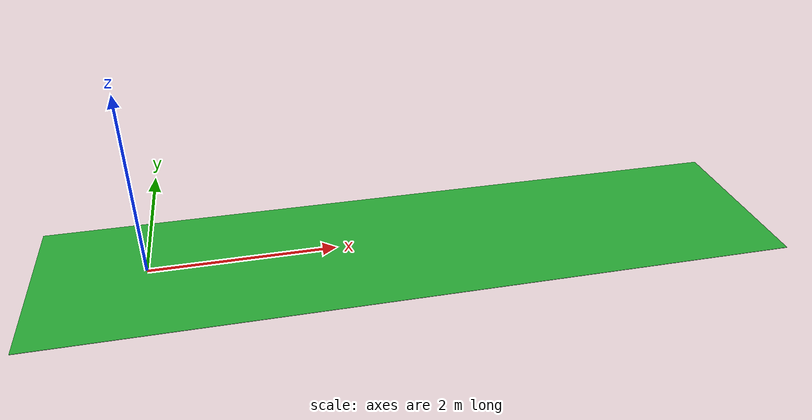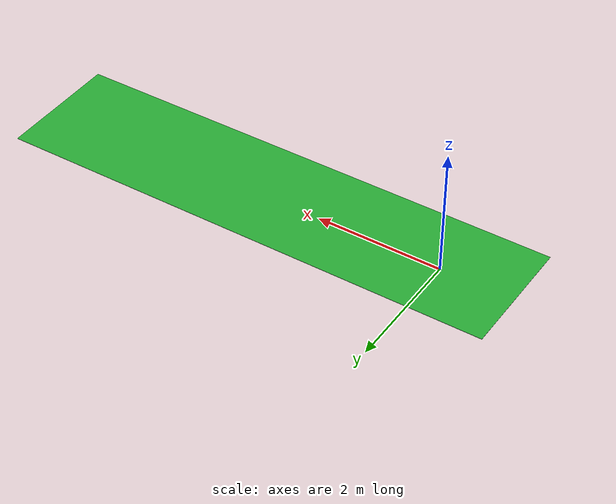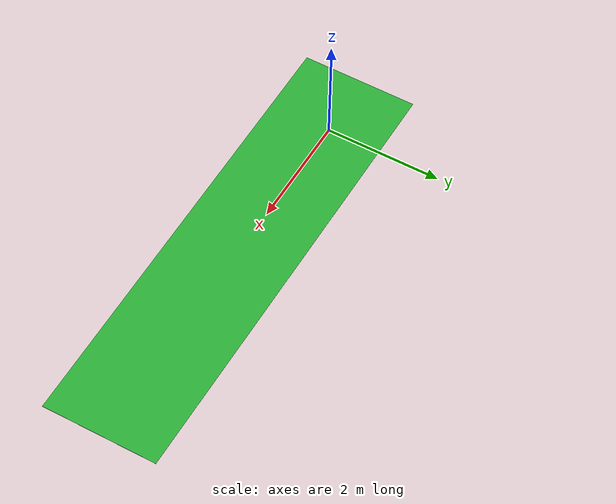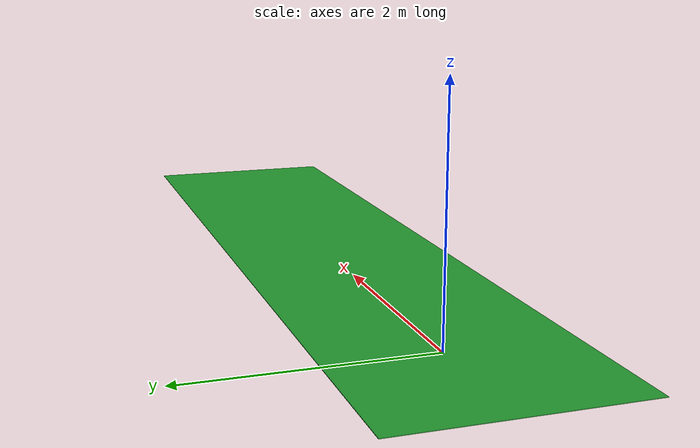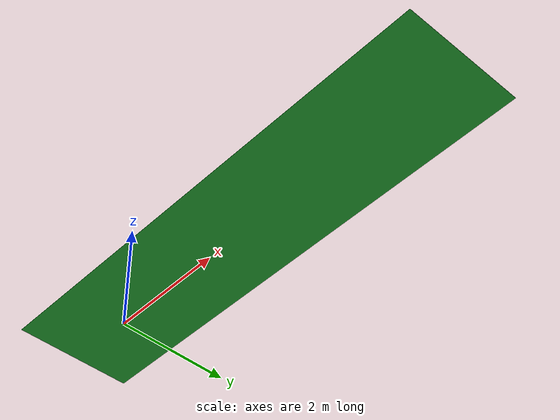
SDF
<?xml version='1.0'?>
<sdf version='1.7'>
  <model name='buckets'>
    <link name='base_green'>
      <inertial>
        <pose>2.71459 -0.001357 0.222916 0 -0 0</pose>
        <mass>1959.16</mass>
        <inertia>
          <ixx>350.977</ixx>
          <ixy>0.710796</ixy>
          <ixz>2.07091</ixz>
          <iyy>10147.4</iyy>
          <iyz>-1.39101</iyz>
          <izz>10345.1</izz>
        </inertia>
      </inertial>
      <self_collide>0</self_collide>
      <enable_wind>0</enable_wind>
      <kinematic>0</kinematic>
      <pose>0 0 0 0 -0 0</pose>
      <visual name='base_green_visual'>
        <pose>0 0 0 0 -0 0</pose>
        <geometry>
          <mesh>
            <scale>1 1 1</scale>
            <uri>meshes/base_green.STL</uri>
          </mesh>
        </geometry>
        <material>
          <script>
            <name>Gazebo/Green</name>
            <uri>file://media/materials/scripts/gazebo.material</uri>
          </script>
          <shader type='pixel'/>
          <ambient>0.0 0.0 1.0 1</ambient>
            <diffuse>0.0 0.0 1.0 1</diffuse>
            <specular>0.0 0.0 1.0 1</specular>
        </material>
        <transparency>0</transparency>
        <cast_shadows>1</cast_shadows>
      </visual>
      <collision name='base_green_collision'>
        <laser_retro>0</laser_retro>
        <max_contacts>10</max_contacts>
        <pose>0 0 0 0 -0 0</pose>
        <geometry>
          <mesh>
            <uri>model://buckets/meshes/base_green.STL</uri>
            <scale>1 1 1</scale>
          </mesh>
        </geometry>
        <surface>
          <friction>
            <ode>
              <mu>1</mu>
              <mu2>1</mu2>
              <fdir1>0 0 0</fdir1>
              <slip1>0</slip1>
              <slip2>0</slip2>
            </ode>
            <torsional>
              <coefficient>1</coefficient>
              <patch_radius>0</patch_radius>
              <surface_radius>0</surface_radius>
              <use_patch_radius>1</use_patch_radius>
              <ode>
                <slip>0</slip>
              </ode>
            </torsional>
          </friction>
          <bounce>
            <restitution_coefficient>0</restitution_coefficient>
            <threshold>1e+06</threshold>
          </bounce>
          <contact>
            <collide_without_contact>0</collide_without_contact>
            <collide_without_contact_bitmask>1</collide_without_contact_bitmask>
            <collide_bitmask>1</collide_bitmask>
            <ode>
              <soft_cfm>0</soft_cfm>
              <soft_erp>0.2</soft_erp>
              <kp>1e+13</kp>
              <kd>1</kd>
              <max_vel>0.01</max_vel>
              <min_depth>0</min_depth>
            </ode>
            <bullet>
              <split_impulse>1</split_impulse>
              <split_impulse_penetration_threshold>-0.01</split_impulse_penetration_threshold>
              <soft_cfm>0</soft_cfm>
              <soft_erp>0.2</soft_erp>
              <kp>1e+13</kp>
              <kd>1</kd>
            </bullet>
          </contact>
        </surface>
      </collision>
    </link>
    <static>1</static>
    <allow_auto_disable>1</allow_auto_disable>
  </model>
</sdf>
